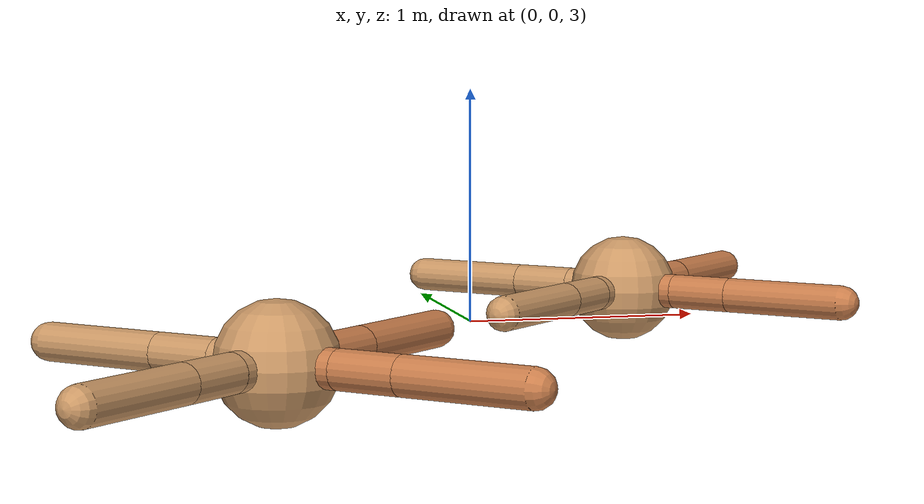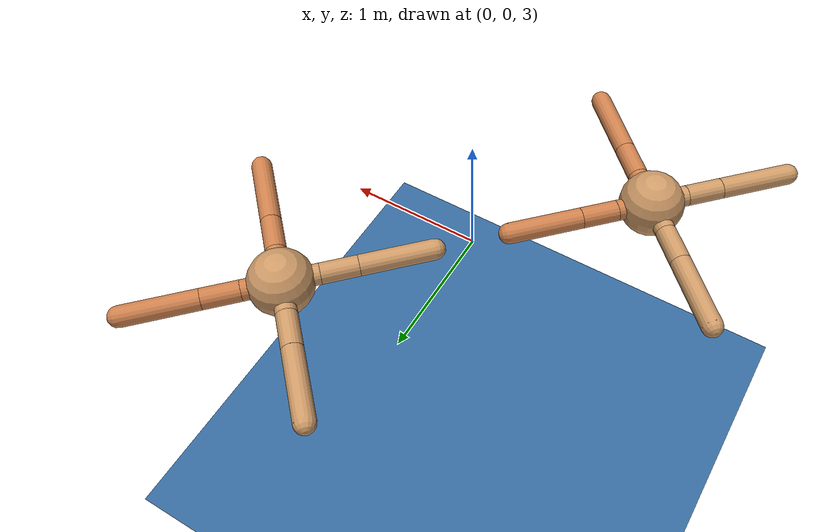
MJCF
<mujoco model="ant">
  <compiler angle="degree" coordinate="local" inertiafromgeom="true"/>
  <option integrator="RK4" timestep="0.01"/>
  <default>
    <joint armature="1" damping="1" limited="true"/>
    <geom conaffinity="0" condim="3" density="5.0" friction="1.5 0.1 0.1" margin="0.01" rgba="0.8 0.6 0.4 1"/>
  </default>

  <worldbody>
    <geom conaffinity="1" type="plane" size="10 10 0.1" rgba=".2 .4 .6 1"/>
  </worldbody>

  <!--################################ FIRST ANT ############################-->
  <worldbody>
    <body name="torso" pos="-1 -1 3">
      <freejoint name="jtorso_free"/>
      <geom name="torso_geom" pos="0 0 0" size="0.25" type="sphere"/>
      <body name="front_left_leg" pos="0 0 0">
        <geom fromto="0.0 0.0 0.0 0.2 0.2 0.0" name="aux_1_geom" size="0.08" type="capsule" rgba=".8 .5 .3 1"/>
        <body name="aux_1" pos="0.2 0.2 0">
          <joint axis="0 0 1" name="hip_1" pos="0.0 0.0 0.0" range="-40 40" type="hinge"/>
          <geom fromto="0.0 0.0 0.0 0.2 0.2 0.0" name="left_leg_geom" size="0.08" type="capsule" rgba=".8 .5 .3 1"/>
          <body pos="0.2 0.2 0" name="front_left_foot">
            <joint axis="-1 1 0" name="ankle_1" pos="0.0 0.0 0.0" range="30 100" type="hinge"/>
            <geom fromto="0.0 0.0 0.0 0.4 0.4 0.0" name="left_ankle_geom" size="0.08" type="capsule" rgba=".8 .5 .3 1"/>
          </body>
        </body>
      </body>
      <body name="front_right_leg" pos="0 0 0">
        <geom fromto="0.0 0.0 0.0 -0.2 0.2 0.0" name="aux_2_geom" size="0.08" type="capsule"/>
        <body name="aux_2" pos="-0.2 0.2 0">
          <joint axis="0 0 1" name="hip_2" pos="0.0 0.0 0.0" range="-40 40" type="hinge"/>
          <geom fromto="0.0 0.0 0.0 -0.2 0.2 0.0" name="right_leg_geom" size="0.08" type="capsule"/>
          <body pos="-0.2 0.2 0" name="front_right_foot">
            <joint axis="1 1 0" name="ankle_2" pos="0.0 0.0 0.0" range="-100 -30" type="hinge"/>
            <geom fromto="0.0 0.0 0.0 -0.4 0.4 0.0" name="right_ankle_geom" size="0.08" type="capsule"/>
          </body>
        </body>
      </body>
      <body name="left_back_leg" pos="0 0 0">
        <geom fromto="0.0 0.0 0.0 -0.2 -0.2 0.0" name="aux_3_geom" size="0.08" type="capsule"/>
        <body name="aux_3" pos="-0.2 -0.2 0">
          <joint axis="0 0 1" name="hip_3" pos="0.0 0.0 0.0" range="-40 40" type="hinge"/>
          <geom fromto="0.0 0.0 0.0 -0.2 -0.2 0.0" name="back_leg_geom" size="0.08" type="capsule"/>
          <body pos="-0.2 -0.2 0" name="left_back_foot">
            <joint axis="-1 1 0" name="ankle_3" pos="0.0 0.0 0.0" range="-100 -30" type="hinge"/>
            <geom fromto="0.0 0.0 0.0 -0.4 -0.4 0.0" name="third_ankle_geom" size="0.08" type="capsule"/>
          </body>
        </body>
      </body>
      <body name="right_back_leg" pos="0 0 0">
        <geom fromto="0.0 0.0 0.0 0.2 -0.2 0.0" name="aux_4_geom" size="0.08" type="capsule" rgba=".8 .5 .3 1"/>
        <body name="aux_4" pos="0.2 -0.2 0">
          <joint axis="0 0 1" name="hip_4" pos="0.0 0.0 0.0" range="-40 40" type="hinge"/>
          <geom fromto="0.0 0.0 0.0 0.2 -0.2 0.0" name="rightback_leg_geom" size="0.08" type="capsule" rgba=".8 .5 .3 1"/>
          <body pos="0.2 -0.2 0" name="right_back_foot">
            <joint axis="1 1 0" name="ankle_4" pos="0.0 0.0 0.0" range="30 100" type="hinge"/>
            <geom fromto="0.0 0.0 0.0 0.4 -0.4 0.0" name="fourth_ankle_geom" size="0.08" type="capsule" rgba=".8 .5 .3 1"/>
          </body>
        </body>
      </body>
    </body>
  </worldbody>
  <actuator>
    <motor ctrllimited="true" ctrlrange="-1.0 1.0" joint="hip_4" gear="150"/>
    <motor ctrllimited="true" ctrlrange="-1.0 1.0" joint="ankle_4" gear="150"/>
    <motor ctrllimited="true" ctrlrange="-1.0 1.0" joint="hip_1" gear="150"/>
    <motor ctrllimited="true" ctrlrange="-1.0 1.0" joint="ankle_1" gear="150"/>
    <motor ctrllimited="true" ctrlrange="-1.0 1.0" joint="hip_2" gear="150"/>
    <motor ctrllimited="true" ctrlrange="-1.0 1.0" joint="ankle_2" gear="150"/>
    <motor ctrllimited="true" ctrlrange="-1.0 1.0" joint="hip_3" gear="150"/>
    <motor ctrllimited="true" ctrlrange="-1.0 1.0" joint="ankle_3" gear="150"/>
  </actuator>

  <!--############################### SECOND ANT ############################-->
  <worldbody>
    <body name="torso_2" pos="1 1 3">
      <freejoint name="jtorso_free_2"/>
      <geom name="torso_geom_2" pos="0 0 0" size="0.25" type="sphere"/>
      <body name="front_left_leg_2" pos="0 0 0">
        <geom fromto="0.0 0.0 0.0 0.2 0.2 0.0" name="aux_1_geom_2" size="0.08" type="capsule" rgba=".8 .5 .3 1"/>
        <body name="aux_1_2" pos="0.2 0.2 0">
          <joint axis="0 0 1" name="hip_1_2" pos="0.0 0.0 0.0" range="-40 40" type="hinge"/>
          <geom fromto="0.0 0.0 0.0 0.2 0.2 0.0" name="left_leg_geom_2" size="0.08" type="capsule" rgba=".8 .5 .3 1"/>
          <body pos="0.2 0.2 0" name="front_left_foot_2">
            <joint axis="-1 1 0" name="ankle_1_2" pos="0.0 0.0 0.0" range="30 100" type="hinge"/>
            <geom fromto="0.0 0.0 0.0 0.4 0.4 0.0" name="left_ankle_geom_2" size="0.08" type="capsule" rgba=".8 .5 .3 1"/>
          </body>
        </body>
      </body>
      <body name="front_right_leg_2" pos="0 0 0">
        <geom fromto="0.0 0.0 0.0 -0.2 0.2 0.0" name="aux_2_geom_2" size="0.08" type="capsule"/>
        <body name="aux_2_2" pos="-0.2 0.2 0">
          <joint axis="0 0 1" name="hip_2_2" pos="0.0 0.0 0.0" range="-40 40" type="hinge"/>
          <geom fromto="0.0 0.0 0.0 -0.2 0.2 0.0" name="right_leg_geom_2" size="0.08" type="capsule"/>
          <body pos="-0.2 0.2 0" name="front_right_foot_2">
            <joint axis="1 1 0" name="ankle_2_2" pos="0.0 0.0 0.0" range="-100 -30" type="hinge"/>
            <geom fromto="0.0 0.0 0.0 -0.4 0.4 0.0" name="right_ankle_geom_2" size="0.08" type="capsule"/>
          </body>
        </body>
      </body>
      <body name="left_back_leg_2" pos="0 0 0">
        <geom fromto="0.0 0.0 0.0 -0.2 -0.2 0.0" name="aux_3_geom_2" size="0.08" type="capsule"/>
        <body name="aux_3_2" pos="-0.2 -0.2 0">
          <joint axis="0 0 1" name="hip_3_2" pos="0.0 0.0 0.0" range="-40 40" type="hinge"/>
          <geom fromto="0.0 0.0 0.0 -0.2 -0.2 0.0" name="back_leg_geom_2" size="0.08" type="capsule"/>
          <body pos="-0.2 -0.2 0" name="left_back_foot_2">
            <joint axis="-1 1 0" name="ankle_3_2" pos="0.0 0.0 0.0" range="-100 -30" type="hinge"/>
            <geom fromto="0.0 0.0 0.0 -0.4 -0.4 0.0" name="third_ankle_geom_2" size="0.08" type="capsule"/>
          </body>
        </body>
      </body>
      <body name="right_back_leg_2" pos="0 0 0">
        <geom fromto="0.0 0.0 0.0 0.2 -0.2 0.0" name="aux_4_geom_2" size="0.08" type="capsule" rgba=".8 .5 .3 1"/>
        <body name="aux_4_2" pos="0.2 -0.2 0">
          <joint axis="0 0 1" name="hip_4_2" pos="0.0 0.0 0.0" range="-40 40" type="hinge"/>
          <geom fromto="0.0 0.0 0.0 0.2 -0.2 0.0" name="rightback_leg_geom_2" size="0.08" type="capsule" rgba=".8 .5 .3 1"/>
          <body pos="0.2 -0.2 0" name="right_back_foot_2">
            <joint axis="1 1 0" name="ankle_4_2" pos="0.0 0.0 0.0" range="30 100" type="hinge"/>
            <geom fromto="0.0 0.0 0.0 0.4 -0.4 0.0" name="fourth_ankle_geom_2" size="0.08" type="capsule" rgba=".8 .5 .3 1"/>
          </body>
        </body>
      </body>
    </body>
  </worldbody>
  <actuator>
    <motor ctrllimited="true" ctrlrange="-1.0 1.0" joint="hip_4_2" gear="150"/>
    <motor ctrllimited="true" ctrlrange="-1.0 1.0" joint="ankle_4_2" gear="150"/>
    <motor ctrllimited="true" ctrlrange="-1.0 1.0" joint="hip_1_2" gear="150"/>
    <motor ctrllimited="true" ctrlrange="-1.0 1.0" joint="ankle_1_2" gear="150"/>
    <motor ctrllimited="true" ctrlrange="-1.0 1.0" joint="hip_2_2" gear="150"/>
    <motor ctrllimited="true" ctrlrange="-1.0 1.0" joint="ankle_2_2" gear="150"/>
    <motor ctrllimited="true" ctrlrange="-1.0 1.0" joint="hip_3_2" gear="150"/>
    <motor ctrllimited="true" ctrlrange="-1.0 1.0" joint="ankle_3_2" gear="150"/>
  </actuator>
</mujoco>
